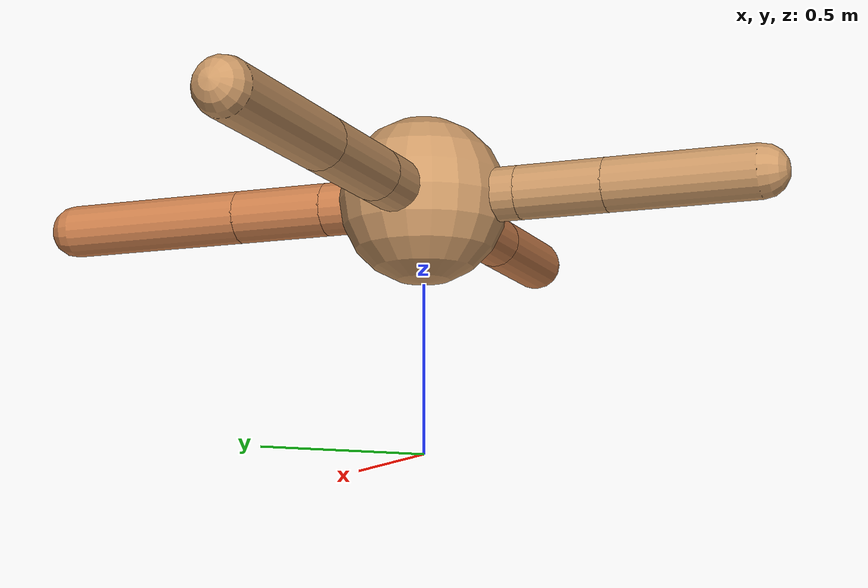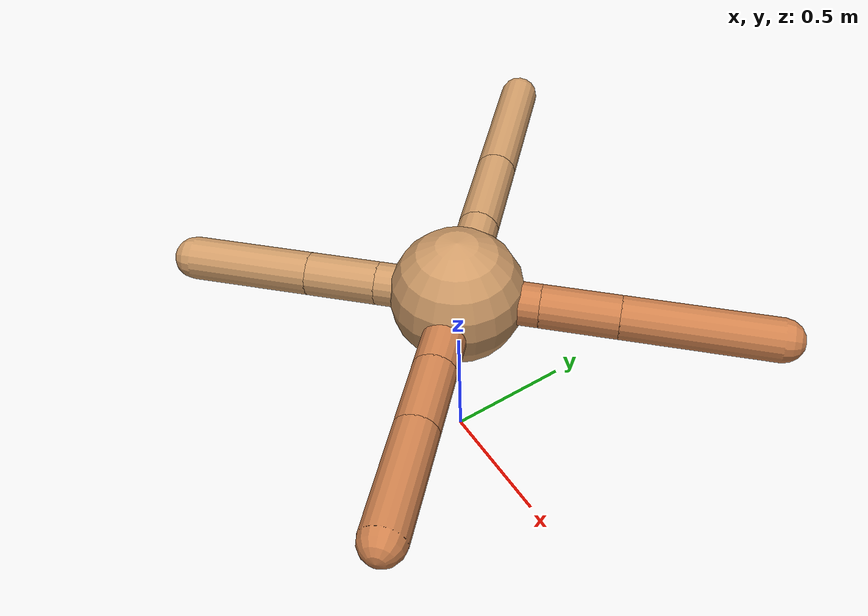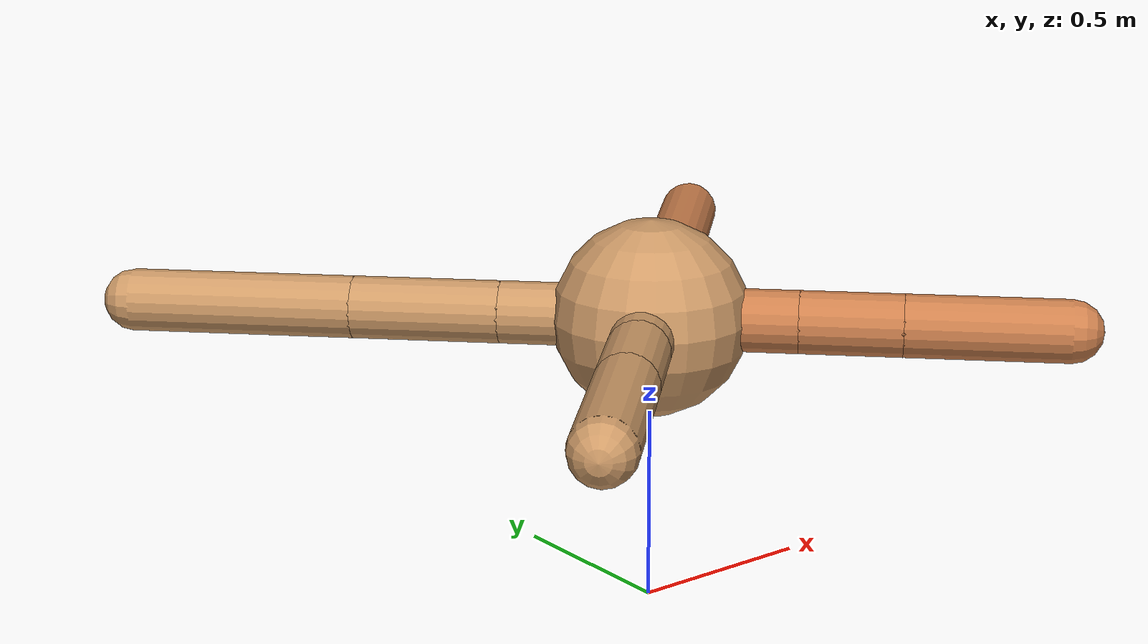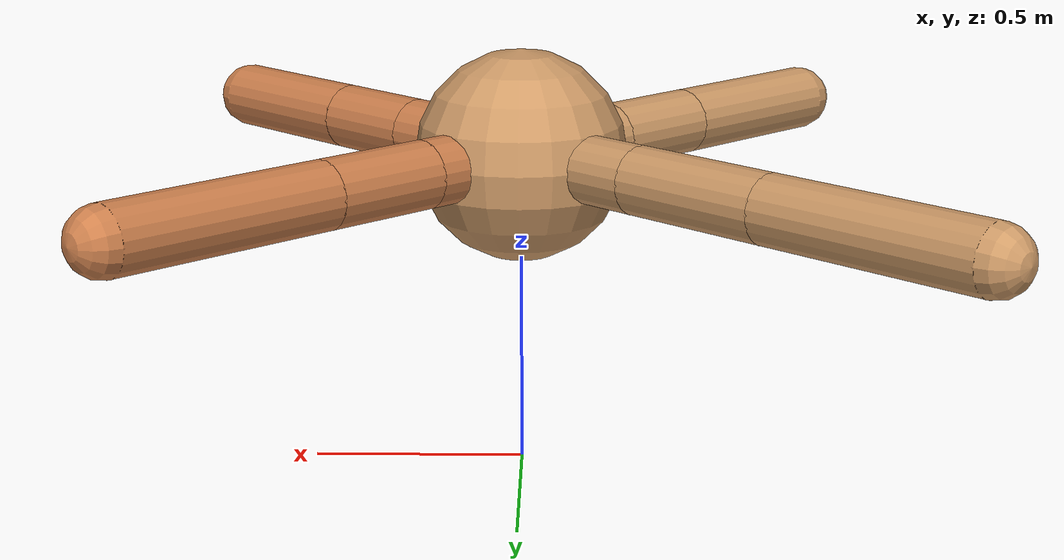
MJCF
<mujoco model="ant">
  <compiler angle="degree" coordinate="local" inertiafromgeom="true" />
  <option integrator="RK4" timestep="0.01" />
  <custom>
    <numeric data="0.0 0.0 0.55 1.0 0.0 0.0 0.0 0.0 1.0 0.0 -1.0 0.0 -1.0 0.0 1.0" name="init_qpos" />
  </custom>
  <default>
    <joint armature="1" damping="1" limited="true" />
    <geom conaffinity="0" condim="3" density="5.0" friction="1.5 0.1 0.1" margin="0.01" rgba="0.8 0.6 0.4 1" />
  </default>
  <worldbody>
    <body name="torso" pos="0 0 0.75">
      <geom name="torso_geom" pos="0 0 0" size="0.25" type="sphere" />

      <body name="front_left_leg" pos="0 0 0">
        <geom fromto="0.0 0.0 0.0 0.21703814446545586 0.21703814446545586 0.0" name="aux_1_geom" size="0.08" type="capsule" rgba=".8 .5 .3 1" />
        <body name="aux_1" pos="0.21703814446545586 0.21703814446545586 0.0">
          <joint axis="0 0 1" name="hip_1" pos="0.0 0.0 0.0" range="-40 40" type="hinge" />
          <geom fromto="0.0 0.0 0.0 0.2029607933530566 0.2029607933530566 0.0" name="left_leg_geom" size="0.08" type="capsule" rgba=".8 .5 .3 1" />
          <body pos="0.2029607933530566 0.2029607933530566 0.0" name="front_left_foot">
            <joint axis="-1 1 0" name="ankle_1" pos="0.0 0.0 0.0" range="30 100" type="hinge" />
            <geom fromto="0.0 0.0 0.0 0.40172117583003075 0.40172117583003075 0.0" name="left_ankle_geom" size="0.08" type="capsule" rgba=".8 .5 .3 1" />
          </body>
        </body>
      </body>
      <body name="front_right_leg" pos="0 0 0">
        <geom fromto="0.0 0.0 0.0 -0.2692669207228364 0.2692669207228364 0.0" name="aux_2_geom" size="0.08" type="capsule" />
        <body name="aux_2" pos="-0.2692669207228364 0.2692669207228364 0.0">
          <joint axis="0 0 1" name="hip_2" pos="0.0 0.0 0.0" range="-40 40" type="hinge" />
          <geom fromto="0.0 0.0 0.0 -0.2674228758018184 0.2674228758018184 0.0" name="right_leg_geom" size="0.08" type="capsule" />
          <body pos="-0.2674228758018184 0.2674228758018184 0.0" name="front_right_foot">
            <joint axis="1 1 0" name="ankle_2" pos="0.0 0.0 0.0" range="-100 -30" type="hinge" />
            <geom fromto="0.0 0.0 0.0 -0.4071771934246229 0.4071771934246229 0.0" name="right_ankle_geom" size="0.08" type="capsule" />
          </body>
        </body>
      </body>
      <body name="left_back_leg" pos="0 0 0">
        <geom fromto="0.0 0.0 0.0 -0.21259862717159042 -0.21259862717159042 0.0" name="aux_3_geom" size="0.08" type="capsule" />
        <body name="aux_3" pos="-0.21259862717159042 -0.21259862717159042 0.0">
          <joint axis="0 0 1" name="hip_3" pos="0.0 0.0 0.0" range="-40 40" type="hinge" />
          <geom fromto="0.0 0.0 0.0 -0.18621957396923605 -0.18621957396923605 0.0" name="back_leg_geom" size="0.08" type="capsule" />
          <body pos="-0.18621957396923605 -0.18621957396923605 0.0" name="left_back_foot">
            <joint axis="-1 1 0" name="ankle_3" pos="0.0 0.0 0.0" range="-100 -30" type="hinge" />
            <geom fromto="0.0 0.0 0.0 -0.318385414847839 -0.318385414847839 0.0" name="third_ankle_geom" size="0.08" type="capsule" />
          </body>
        </body>
      </body>
      <body name="right_back_leg" pos="0 0 0">
        <geom fromto="0.0 0.0 0.0 0.26286136598162724 -0.26286136598162724 0.0" name="aux_4_geom" size="0.08" type="capsule" rgba=".8 .5 .3 1" />
        <body name="aux_4" pos="0.26286136598162724 -0.26286136598162724 0.0">
          <joint axis="0 0 1" name="hip_4" pos="0.0 0.0 0.0" range="-40 40" type="hinge" />
          <geom fromto="0.0 0.0 0.0 0.18308377288361763 -0.18308377288361763 0.0" name="rightback_leg_geom" size="0.08" type="capsule" rgba=".8 .5 .3 1" />
          <body pos="0.18308377288361763 -0.18308377288361763 0.0" name="right_back_foot">
            <joint axis="1 1 0" name="ankle_4" pos="0.0 0.0 0.0" range="30 100" type="hinge" />
            <geom fromto="0.0 0.0 0.0 0.29015274154231463 -0.29015274154231463 0.0" name="fourth_ankle_geom" size="0.08" type="capsule" rgba=".8 .5 .3 1" />
          </body>
        </body>
      </body>
    </body>
  </worldbody>
  <actuator>
    <motor ctrllimited="true" ctrlrange="-1.0 1.0" joint="hip_4" gear="150" />
    <motor ctrllimited="true" ctrlrange="-1.0 1.0" joint="ankle_4" gear="150" />
    <motor ctrllimited="true" ctrlrange="-1.0 1.0" joint="hip_1" gear="150" />
    <motor ctrllimited="true" ctrlrange="-1.0 1.0" joint="ankle_1" gear="150" />
    <motor ctrllimited="true" ctrlrange="-1.0 1.0" joint="hip_2" gear="150" />
    <motor ctrllimited="true" ctrlrange="-1.0 1.0" joint="ankle_2" gear="150" />
    <motor ctrllimited="true" ctrlrange="-1.0 1.0" joint="hip_3" gear="150" />
    <motor ctrllimited="true" ctrlrange="-1.0 1.0" joint="ankle_3" gear="150" />
  </actuator>
</mujoco>
